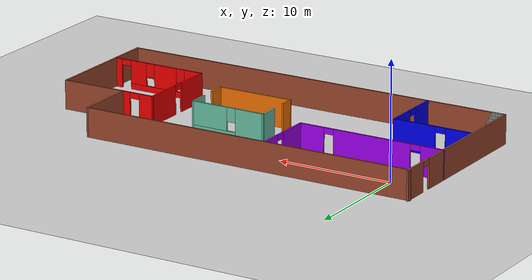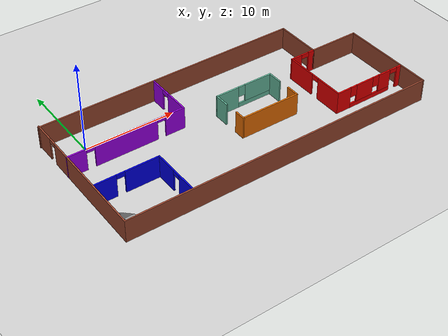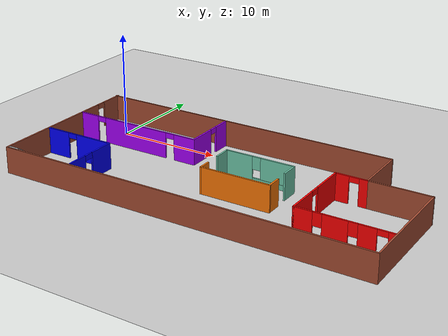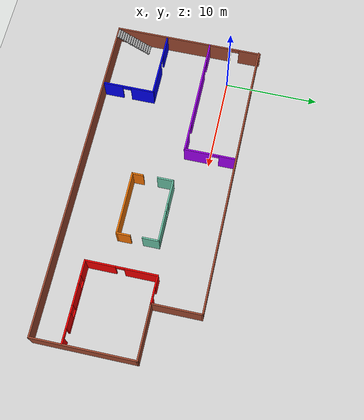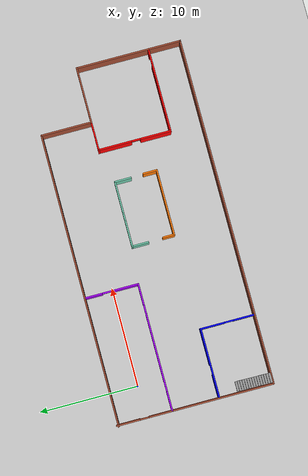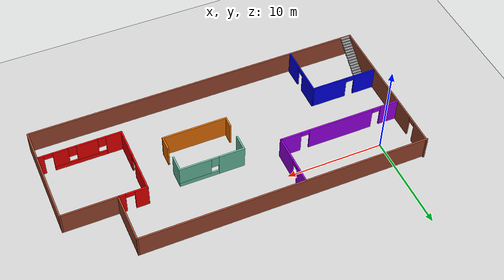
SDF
<sdf version="1.6">
 <world name="default">
  <light name="sun" type="directional">
   <pose>0 0 10 0 -0 0</pose>
   <diffuse>0.8 0.8 0.8 1</diffuse>
   <specular>0.2 0.2 0.2 1</specular>
   <attenuation>
    <range>1000</range>
    <constant>0.9</constant>
    <linear>0.01</linear>
    <quadratic>0.001</quadratic>
   </attenuation>
   <direction>-0.5 0.1 -0.9</direction>
  </light>
  <model name="ground_plane">
   <static>1</static>
   <link name="link">
    <collision name="collision">
     <geometry><plane><normal>0 0 1</normal><size>100 100</size></plane></geometry>
     <surface><friction><ode><mu>100</mu><mu2>50</mu2></ode></friction></surface>
    </collision>
    <visual name="visual">
     <cast_shadows>0</cast_shadows>
     <geometry><plane><normal>0 0 1</normal><size>100 100</size></plane></geometry>
     <material>
      <script><uri>file://media/materials/scripts/gazebo.material</uri><name>Gazebo/Grey</name></script>
     </material>
    </visual>
   </link>
  </model>
  <gravity>0 0 -9.8</gravity>
  <magnetic_field>6e-06 2.3e-05 -4.2e-05</magnetic_field>
  <atmosphere type="adiabatic"/>
  <physics name="default_physics" default="0" type="ode">
   <max_step_size>0.001</max_step_size>
   <real_time_factor>1</real_time_factor>
   <real_time_update_rate>1000</real_time_update_rate>
  </physics>
  <scene><ambient>0.4 0.4 0.4 1</ambient><background>0.7 0.7 0.7 1</background><shadows>1</shadows></scene>
  <spherical_coordinates>
   <surface_model>EARTH_WGS84</surface_model>
   <latitude_deg>0</latitude_deg>
   <longitude_deg>0</longitude_deg>
   <elevation>0</elevation>
   <heading_deg>0</heading_deg>
  </spherical_coordinates>
  <model name="color_house">
   <pose>14.3213 -4.96551 0 0 -0 0</pose>
   <link name="Stairs_0">
    <visual name="Stairs_0_Visual_0">
     <pose>-16.8708 -4.50508 0.083333 0 -0 0</pose>
     <geometry><box><size>1 0.233333 0.166667</size></box></geometry>
     <material>
      <script><uri>file://media/materials/scripts/gazebo.material</uri><name>Gazebo/Grey</name></script>
      <ambient>1 1 1 1</ambient>
     </material>
     <meta><layer>0</layer></meta>
    </visual>
    <collision name="Stairs_0_Collision_0">
     <geometry><box><size>1 0.233333 0.166667</size></box></geometry>
     <pose>-16.8708 -4.50508 0.083333 0 -0 0</pose>
    </collision>
    <visual name="Stairs_0_Visual_1">
     <pose>-16.8708 -4.73841 0.25 0 -0 0</pose>
     <geometry><box><size>1 0.233333 0.166667</size></box></geometry>
     <material>
      <script><uri>file://media/materials/scripts/gazebo.material</uri><name>Gazebo/Grey</name></script>
      <ambient>1 1 1 1</ambient>
     </material>
     <meta><layer>0</layer></meta>
    </visual>
    <collision name="Stairs_0_Collision_1">
     <geometry><box><size>1 0.233333 0.166667</size></box></geometry>
     <pose>-16.8708 -4.73841 0.25 0 -0 0</pose>
    </collision>
    <visual name="Stairs_0_Visual_2">
     <pose>-16.8708 -4.97174 0.416667 0 -0 0</pose>
     <geometry><box><size>1 0.233333 0.166667</size></box></geometry>
     <material>
      <script><uri>file://media/materials/scripts/gazebo.material</uri><name>Gazebo/Grey</name></script>
      <ambient>1 1 1 1</ambient>
     </material>
     <meta><layer>0</layer></meta>
    </visual>
    <collision name="Stairs_0_Collision_2">
     <geometry><box><size>1 0.233333 0.166667</size></box></geometry>
     <pose>-16.8708 -4.97174 0.416667 0 -0 0</pose>
    </collision>
    <visual name="Stairs_0_Visual_3">
     <pose>-16.8708 -5.20508 0.583333 0 -0 0</pose>
     <geometry><box><size>1 0.233333 0.166667</size></box></geometry>
     <material>
      <script><uri>file://media/materials/scripts/gazebo.material</uri><name>Gazebo/Grey</name></script>
      <ambient>1 1 1 1</ambient>
     </material>
     <meta><layer>0</layer></meta>
    </visual>
    <collision name="Stairs_0_Collision_3">
     <geometry><box><size>1 0.233333 0.166667</size></box></geometry>
     <pose>-16.8708 -5.20508 0.583333 0 -0 0</pose>
    </collision>
    <visual name="Stairs_0_Visual_4">
     <pose>-16.8708 -5.43841 0.75 0 -0 0</pose>
     <geometry><box><size>1 0.233333 0.166667</size></box></geometry>
     <material>
      <script><uri>file://media/materials/scripts/gazebo.material</uri><name>Gazebo/Grey</name></script>
      <ambient>1 1 1 1</ambient>
     </material>
     <meta><layer>0</layer></meta>
    </visual>
    <collision name="Stairs_0_Collision_4">
     <geometry><box><size>1 0.233333 0.166667</size></box></geometry>
     <pose>-16.8708 -5.43841 0.75 0 -0 0</pose>
    </collision>
    <visual name="Stairs_0_Visual_5">
     <pose>-16.8708 -5.67174 0.916667 0 -0 0</pose>
     <geometry><box><size>1 0.233333 0.166667</size></box></geometry>
     <material>
      <script><uri>file://media/materials/scripts/gazebo.material</uri><name>Gazebo/Grey</name></script>
      <ambient>1 1 1 1</ambient>
     </material>
     <meta><layer>0</layer></meta>
    </visual>
    <collision name="Stairs_0_Collision_5">
     <geometry><box><size>1 0.233333 0.166667</size></box></geometry>
     <pose>-16.8708 -5.67174 0.916667 0 -0 0</pose>
    </collision>
    <visual name="Stairs_0_Visual_6">
     <pose>-16.8708 -5.90508 1.08333 0 -0 0</pose>
     <geometry><box><size>1 0.233333 0.166667</size></box></geometry>
     <material>
      <script><uri>file://media/materials/scripts/gazebo.material</uri><name>Gazebo/Grey</name></script>
      <ambient>1 1 1 1</ambient>
     </material>
     <meta><layer>0</layer></meta>
    </visual>
    <collision name="Stairs_0_Collision_6">
     <geometry><box><size>1 0.233333 0.166667</size></box></geometry>
     <pose>-16.8708 -5.90508 1.08333 0 -0 0</pose>
    </collision>
    <visual name="Stairs_0_Visual_7">
     <pose>-16.8708 -6.13841 1.25 0 -0 0</pose>
     <geometry><box><size>1 0.233333 0.166667</size></box></geometry>
     <material>
      <script><uri>file://media/materials/scripts/gazebo.material</uri><name>Gazebo/Grey</name></script>
      <ambient>1 1 1 1</ambient>
     </material>
     <meta><layer>0</layer></meta>
    </visual>
    <collision name="Stairs_0_Collision_7">
     <geometry><box><size>1 0.233333 0.166667</size></box></geometry>
     <pose>-16.8708 -6.13841 1.25 0 -0 0</pose>
    </collision>
    <visual name="Stairs_0_Visual_8">
     <pose>-16.8708 -6.37174 1.41667 0 -0 0</pose>
     <geometry><box><size>1 0.233333 0.166667</size></box></geometry>
     <material>
      <script><uri>file://media/materials/scripts/gazebo.material</uri><name>Gazebo/Grey</name></script>
      <ambient>1 1 1 1</ambient>
     </material>
     <meta><layer>0</layer></meta>
    </visual>
    <collision name="Stairs_0_Collision_8">
     <geometry><box><size>1 0.233333 0.166667</size></box></geometry>
     <pose>-16.8708 -6.37174 1.41667 0 -0 0</pose>
    </collision>
    <visual name="Stairs_0_Visual_9">
     <pose>-16.8708 -6.60508 1.58333 0 -0 0</pose>
     <geometry><box><size>1 0.233333 0.166667</size></box></geometry>
     <material>
      <script><uri>file://media/materials/scripts/gazebo.material</uri><name>Gazebo/Grey</name></script>
      <ambient>1 1 1 1</ambient>
     </material>
     <meta><layer>0</layer></meta>
    </visual>
    <collision name="Stairs_0_Collision_9">
     <geometry><box><size>1 0.233333 0.166667</size></box></geometry>
     <pose>-16.8708 -6.60508 1.58333 0 -0 0</pose>
    </collision>
    <visual name="Stairs_0_Visual_10">
     <pose>-16.8708 -6.83841 1.75 0 -0 0</pose>
     <geometry><box><size>1 0.233333 0.166667</size></box></geometry>
     <material>
      <script><uri>file://media/materials/scripts/gazebo.material</uri><name>Gazebo/Grey</name></script>
      <ambient>1 1 1 1</ambient>
     </material>
     <meta><layer>0</layer></meta>
    </visual>
    <collision name="Stairs_0_Collision_10">
     <geometry><box><size>1 0.233333 0.166667</size></box></geometry>
     <pose>-16.8708 -6.83841 1.75 0 -0 0</pose>
    </collision>
    <visual name="Stairs_0_Visual_11">
     <pose>-16.8708 -7.07174 1.91667 0 -0 0</pose>
     <geometry><box><size>1 0.233333 0.166667</size></box></geometry>
     <material>
      <script><uri>file://media/materials/scripts/gazebo.material</uri><name>Gazebo/Grey</name></script>
      <ambient>1 1 1 1</ambient>
     </material>
     <meta><layer>0</layer></meta>
    </visual>
    <collision name="Stairs_0_Collision_11">
     <geometry><box><size>1 0.233333 0.166667</size></box></geometry>
     <pose>-16.8708 -7.07174 1.91667 0 -0 0</pose>
    </collision>
    <visual name="Stairs_0_Visual_12">
     <pose>-16.8708 -7.30508 2.08333 0 -0 0</pose>
     <geometry><box><size>1 0.233333 0.166667</size></box></geometry>
     <material>
      <script><uri>file://media/materials/scripts/gazebo.material</uri><name>Gazebo/Grey</name></script>
      <ambient>1 1 1 1</ambient>
     </material>
     <meta><layer>0</layer></meta>
    </visual>
    <collision name="Stairs_0_Collision_12">
     <geometry><box><size>1 0.233333 0.166667</size></box></geometry>
     <pose>-16.8708 -7.30508 2.08333 0 -0 0</pose>
    </collision>
    <visual name="Stairs_0_Visual_13">
     <pose>-16.8708 -7.53841 2.25 0 -0 0</pose>
     <geometry><box><size>1 0.233333 0.166667</size></box></geometry>
     <material>
      <script><uri>file://media/materials/scripts/gazebo.material</uri><name>Gazebo/Grey</name></script>
      <ambient>1 1 1 1</ambient>
     </material>
     <meta><layer>0</layer></meta>
    </visual>
    <collision name="Stairs_0_Collision_13">
     <geometry><box><size>1 0.233333 0.166667</size></box></geometry>
     <pose>-16.8708 -7.53841 2.25 0 -0 0</pose>
    </collision>
    <visual name="Stairs_0_Visual_14">
     <pose>-16.8708 -7.77174 2.41667 0 -0 0</pose>
     <geometry><box><size>1 0.233333 0.166667</size></box></geometry>
     <material>
      <script><uri>file://media/materials/scripts/gazebo.material</uri><name>Gazebo/Grey</name></script>
      <ambient>1 1 1 1</ambient>
     </material>
     <meta><layer>0</layer></meta>
    </visual>
    <collision name="Stairs_0_Collision_14">
     <geometry><box><size>1 0.233333 0.166667</size></box></geometry>
     <pose>-16.8708 -7.77174 2.41667 0 -0 0</pose>
    </collision>
   </link>
   <link name="Wall_29">
    <pose>-17.5 0 0 0 0 -1.5708</pose>
    <visual name="Wall_29_Visual_0">
     <pose>-6.79966 0 1.25 0 -0 0</pose>
     <geometry><box><size>2.40067 0.15 2.5</size></box></geometry>
     <material>
      <script><uri>file://media/materials/scripts/gazebo.material</uri><name>Gazebo/Bricks</name></script>
      <ambient>1 1 1 1</ambient>
     </material>
     <meta><layer>0</layer></meta>
    </visual>
    <collision name="Wall_29_Collision_0">
     <geometry><box><size>2.40067 0.15 2.5</size></box></geometry>
     <pose>-6.79966 0 1.25 0 -0 0</pose>
    </collision>
    <visual name="Wall_29_Visual_1">
     <pose>1.65034 0 1.25 0 -0 0</pose>
     <geometry><box><size>12.6993 0.15 2.5</size></box></geometry>
     <material>
      <script><uri>file://media/materials/scripts/gazebo.material</uri><name>Gazebo/Bricks</name></script>
      <ambient>1 1 1 1</ambient>
     </material>
     <meta><layer>0</layer></meta>
    </visual>
    <collision name="Wall_29_Collision_1">
     <geometry><box><size>12.6993 0.15 2.5</size></box></geometry>
     <pose>1.65034 0 1.25 0 -0 0</pose>
    </collision>
    <visual name="Wall_29_Visual_2">
     <pose>-5.14933 0 2.25 0 -0 0</pose>
     <geometry><box><size>0.9 0.15 0.5</size></box></geometry>
     <material>
      <script><uri>file://media/materials/scripts/gazebo.material</uri><name>Gazebo/Bricks</name></script>
      <ambient>1 1 1 1</ambient>
     </material>
     <meta><layer>0</layer></meta>
    </visual>
    <collision name="Wall_29_Collision_2">
     <geometry><box><size>0.9 0.15 0.5</size></box></geometry>
     <pose>-5.14933 0 2.25 0 -0 0</pose>
    </collision>
   </link>
   <link name="Wall_30">
    <collision name="Wall_30_Collision">
     <geometry><box><size>35.25 0.15 2.5</size></box></geometry>
     <pose>0 0 1.25 0 -0 0</pose>
    </collision>
    <visual name="Wall_30_Visual">
     <pose>0 0 1.25 0 -0 0</pose>
     <geometry><box><size>35.25 0.15 2.5</size></box></geometry>
     <material>
      <script><uri>file://media/materials/scripts/gazebo.material</uri><name>Gazebo/Bricks</name></script>
      <ambient>1 1 1 1</ambient>
     </material>
     <meta><layer>0</layer></meta>
    </visual>
    <pose>0.05 -7.925 0 0 -0 0</pose>
   </link>
   <link name="Wall_33">
    <collision name="Wall_33_Collision">
     <geometry><box><size>10.75 0.15 2.5</size></box></geometry>
     <pose>0 0 1.25 0 -0 0</pose>
    </collision>
    <visual name="Wall_33_Visual">
     <pose>0 0 1.25 0 -0 0</pose>
     <geometry><box><size>10.75 0.15 2.5</size></box></geometry>
     <material>
      <script><uri>file://media/materials/scripts/gazebo.material</uri><name>Gazebo/Bricks</name></script>
      <ambient>1 1 1 1</ambient>
     </material>
     <meta><layer>0</layer></meta>
    </visual>
    <pose>17.6 -2.625 0 0 -0 1.5708</pose>
   </link>
   <link name="Wall_34">
    <collision name="Wall_34_Collision">
     <geometry><box><size>5.75 0.15 2.5</size></box></geometry>
     <pose>0 0 1.25 0 -0 0</pose>
    </collision>
    <visual name="Wall_34_Visual">
     <pose>0 0 1.25 0 -0 0</pose>
     <geometry><box><size>5.75 0.15 2.5</size></box></geometry>
     <material>
      <script><uri>file://media/materials/scripts/gazebo.material</uri><name>Gazebo/Bricks</name></script>
      <ambient>1 1 1 1</ambient>
     </material>
     <meta><layer>0</layer></meta>
    </visual>
    <pose>14.8 2.675 0 0 -0 3.14159</pose>
   </link>
   <link name="Wall_35">
    <collision name="Wall_35_Collision">
     <geometry><box><size>5.25 0.15 2.5</size></box></geometry>
     <pose>0 0 1.25 0 -0 0</pose>
    </collision>
    <visual name="Wall_35_Visual">
     <pose>0 0 1.25 0 -0 0</pose>
     <geometry><box><size>5.25 0.15 2.5</size></box></geometry>
     <material>
      <script><uri>file://media/materials/scripts/gazebo.material</uri><name>Gazebo/Bricks</name></script>
      <ambient>1 1 1 1</ambient>
     </material>
     <meta><layer>0</layer></meta>
    </visual>
    <pose>12 5.225 0 0 -0 1.5708</pose>
   </link>
   <link name="Wall_36">
    <collision name="Wall_36_Collision">
     <geometry><box><size>29.75 0.15 2.5</size></box></geometry>
     <pose>0 0 1.25 0 -0 0</pose>
    </collision>
    <visual name="Wall_36_Visual">
     <pose>0 0 1.25 0 -0 0</pose>
     <geometry><box><size>29.75 0.15 2.5</size></box></geometry>
     <material>
      <script><uri>file://media/materials/scripts/gazebo.material</uri><name>Gazebo/Bricks</name></script>
      <ambient>1 1 1 1</ambient>
     </material>
     <meta><layer>0</layer></meta>
    </visual>
    <pose>-2.8 7.775 0 0 -0 3.14159</pose>
   </link>
   <link name="Wall_39">
    <pose>-11.075 2.33664 0 0 -0 0</pose>
    <visual name="Wall_39_Visual_0">
     <pose>-5.4662 0 1.25 0 -0 0</pose>
     <geometry><box><size>2.06759 0.15 2.5</size></box></geometry>
     <material>
      <script><uri>file://media/materials/scripts/gazebo.material</uri><name>Gazebo/Grey</name></script>
      <ambient>0.666667 0 1 1</ambient>
     </material>
     <meta><layer>0</layer></meta>
    </visual>
    <collision name="Wall_39_Collision_0">
     <geometry><box><size>2.06759 0.15 2.5</size></box></geometry>
     <pose>-5.4662 0 1.25 0 -0 0</pose>
    </collision>
    <visual name="Wall_39_Visual_1">
     <pose>-0.077961 0 1.25 0 -0 0</pose>
     <geometry><box><size>6.90889 0.15 2.5</size></box></geometry>
     <material>
      <script><uri>file://media/materials/scripts/gazebo.material</uri><name>Gazebo/Grey</name></script>
      <ambient>0.666667 0 1 1</ambient>
     </material>
     <meta><layer>0</layer></meta>
    </visual>
    <collision name="Wall_39_Collision_1">
     <geometry><box><size>6.90889 0.15 2.5</size></box></geometry>
     <pose>-0.077961 0 1.25 0 -0 0</pose>
    </collision>
    <visual name="Wall_39_Visual_2">
     <pose>5.38824 0 1.25 0 -0 0</pose>
     <geometry><box><size>2.22351 0.15 2.5</size></box></geometry>
     <material>
      <script><uri>file://media/materials/scripts/gazebo.material</uri><name>Gazebo/Grey</name></script>
      <ambient>0.666667 0 1 1</ambient>
     </material>
     <meta><layer>0</layer></meta>
    </visual>
    <collision name="Wall_39_Collision_2">
     <geometry><box><size>2.22351 0.15 2.5</size></box></geometry>
     <pose>5.38824 0 1.25 0 -0 0</pose>
    </collision>
    <visual name="Wall_39_Visual_3">
     <pose>-3.98241 0 2.25 0 -0 0</pose>
     <geometry><box><size>0.9 0.15 0.5</size></box></geometry>
     <material>
      <script><uri>file://media/materials/scripts/gazebo.material</uri><name>Gazebo/Grey</name></script>
      <ambient>0.666667 0 1 1</ambient>
     </material>
     <meta><layer>0</layer></meta>
    </visual>
    <collision name="Wall_39_Collision_3">
     <geometry><box><size>0.9 0.15 0.5</size></box></geometry>
     <pose>-3.98241 0 2.25 0 -0 0</pose>
    </collision>
    <visual name="Wall_39_Visual_4">
     <pose>3.82649 0 2.25 0 -0 0</pose>
     <geometry><box><size>0.9 0.15 0.5</size></box></geometry>
     <material>
      <script><uri>file://media/materials/scripts/gazebo.material</uri><name>Gazebo/Grey</name></script>
      <ambient>0.666667 0 1 1</ambient>
     </material>
     <meta><layer>0</layer></meta>
    </visual>
    <collision name="Wall_39_Collision_4">
     <geometry><box><size>0.9 0.15 0.5</size></box></geometry>
     <pose>3.82649 0 2.25 0 -0 0</pose>
    </collision>
   </link>
   <link name="Wall_40">
    <pose>-4.65 5.01164 0 0 -0 1.5708</pose>
    <visual name="Wall_40_Visual_0">
     <pose>-1.34611 0 1.25 0 -0 0</pose>
     <geometry><box><size>2.80777 0.15 2.5</size></box></geometry>
     <material>
      <script><uri>file://media/materials/scripts/gazebo.material</uri><name>Gazebo/Grey</name></script>
      <ambient>0.666667 0 1 1</ambient>
     </material>
     <meta><layer>0</layer></meta>
    </visual>
    <collision name="Wall_40_Collision_0">
     <geometry><box><size>2.80777 0.15 2.5</size></box></geometry>
     <pose>-1.34611 0 1.25 0 -0 0</pose>
    </collision>
    <visual name="Wall_40_Visual_1">
     <pose>1.85389 0 1.25 0 -0 0</pose>
     <geometry><box><size>1.79223 0.15 2.5</size></box></geometry>
     <material>
      <script><uri>file://media/materials/scripts/gazebo.material</uri><name>Gazebo/Grey</name></script>
      <ambient>0.666667 0 1 1</ambient>
     </material>
     <meta><layer>0</layer></meta>
    </visual>
    <collision name="Wall_40_Collision_1">
     <geometry><box><size>1.79223 0.15 2.5</size></box></geometry>
     <pose>1.85389 0 1.25 0 -0 0</pose>
    </collision>
    <visual name="Wall_40_Visual_2">
     <pose>0.507772 0 2.25 0 -0 0</pose>
     <geometry><box><size>0.9 0.15 0.5</size></box></geometry>
     <material>
      <script><uri>file://media/materials/scripts/gazebo.material</uri><name>Gazebo/Grey</name></script>
      <ambient>0.666667 0 1 1</ambient>
     </material>
     <meta><layer>0</layer></meta>
    </visual>
    <collision name="Wall_40_Collision_2">
     <geometry><box><size>0.9 0.15 0.5</size></box></geometry>
     <pose>0.507772 0 2.25 0 -0 0</pose>
    </collision>
   </link>
   <link name="Wall_42">
    <pose>-13.927 -2.43751 0 0 -0 0</pose>
    <visual name="Wall_42_Visual_0">
     <pose>-2.33667 0 1.25 0 -0 0</pose>
     <geometry><box><size>2.32666 0.15 2.5</size></box></geometry>
     <material>
      <script><uri>file://media/materials/scripts/gazebo.material</uri><name>Gazebo/Grey</name></script>
      <ambient>0 0 1 1</ambient>
     </material>
     <meta><layer>0</layer></meta>
    </visual>
    <collision name="Wall_42_Collision_0">
     <geometry><box><size>2.32666 0.15 2.5</size></box></geometry>
     <pose>-2.33667 0 1.25 0 -0 0</pose>
    </collision>
    <visual name="Wall_42_Visual_1">
     <pose>1.61333 0 1.25 0 -0 0</pose>
     <geometry><box><size>3.77334 0.15 2.5</size></box></geometry>
     <material>
      <script><uri>file://media/materials/scripts/gazebo.material</uri><name>Gazebo/Grey</name></script>
      <ambient>0 0 1 1</ambient>
     </material>
     <meta><layer>0</layer></meta>
    </visual>
    <collision name="Wall_42_Collision_1">
     <geometry><box><size>3.77334 0.15 2.5</size></box></geometry>
     <pose>1.61333 0 1.25 0 -0 0</pose>
    </collision>
    <visual name="Wall_42_Visual_2">
     <pose>-0.723345 0 2.25 0 -0 0</pose>
     <geometry><box><size>0.9 0.15 0.5</size></box></geometry>
     <material>
      <script><uri>file://media/materials/scripts/gazebo.material</uri><name>Gazebo/Grey</name></script>
      <ambient>0 0 1 1</ambient>
     </material>
     <meta><layer>0</layer></meta>
    </visual>
    <collision name="Wall_42_Collision_2">
     <geometry><box><size>0.9 0.15 0.5</size></box></geometry>
     <pose>-0.723345 0 2.25 0 -0 0</pose>
    </collision>
   </link>
   <link name="Wall_43">
    <pose>-10.502 -5.11251 0 0 0 -1.5708</pose>
    <visual name="Wall_43_Visual_0">
     <pose>-1.49415 0 1.25 0 -0 0</pose>
     <geometry><box><size>2.5117 0.15 2.5</size></box></geometry>
     <material>
      <script><uri>file://media/materials/scripts/gazebo.material</uri><name>Gazebo/Grey</name></script>
      <ambient>0 0 1 1</ambient>
     </material>
     <meta><layer>0</layer></meta>
    </visual>
    <collision name="Wall_43_Collision_0">
     <geometry><box><size>2.5117 0.15 2.5</size></box></geometry>
     <pose>-1.49415 0 1.25 0 -0 0</pose>
    </collision>
    <visual name="Wall_43_Visual_1">
     <pose>1.70585 0 1.25 0 -0 0</pose>
     <geometry><box><size>2.0883 0.15 2.5</size></box></geometry>
     <material>
      <script><uri>file://media/materials/scripts/gazebo.material</uri><name>Gazebo/Grey</name></script>
      <ambient>0 0 1 1</ambient>
     </material>
     <meta><layer>0</layer></meta>
    </visual>
    <collision name="Wall_43_Collision_1">
     <geometry><box><size>2.0883 0.15 2.5</size></box></geometry>
     <pose>1.70585 0 1.25 0 -0 0</pose>
    </collision>
    <visual name="Wall_43_Visual_2">
     <pose>0.2117 0 2.25 0 -0 0</pose>
     <geometry><box><size>0.9 0.15 0.5</size></box></geometry>
     <material>
      <script><uri>file://media/materials/scripts/gazebo.material</uri><name>Gazebo/Grey</name></script>
      <ambient>0 0 1 1</ambient>
     </material>
     <meta><layer>0</layer></meta>
    </visual>
    <collision name="Wall_43_Collision_2">
     <geometry><box><size>0.9 0.15 0.5</size></box></geometry>
     <pose>0.2117 0 2.25 0 -0 0</pose>
    </collision>
   </link>
   <link name="Wall_45">
    <collision name="Wall_45_Collision">
     <geometry><box><size>1.75 0.15 2.5</size></box></geometry>
     <pose>0 0 1.25 0 -0 0</pose>
    </collision>
    <visual name="Wall_45_Visual">
     <pose>0 0 1.25 0 -0 0</pose>
     <geometry><box><size>1.75 0.15 2.5</size></box></geometry>
     <material>
      <script><uri>file://media/materials/scripts/gazebo.material</uri><name>Gazebo/Grey</name></script>
      <ambient>0.435294 0.796078 0.67451 1</ambient>
     </material>
     <meta><layer>0</layer></meta>
    </visual>
    <pose>-0.919981 1.13816 0 0 -0 1.5708</pose>
   </link>
   <link name="Wall_46">
    <pose>2.38002 1.93816 0 0 -0 0</pose>
    <visual name="Wall_46_Visual_0">
     <pose>-2.03864 0 1.25 0 -0 0</pose>
     <geometry><box><size>2.67273 0.15 2.5</size></box></geometry>
     <material>
      <script><uri>file://media/materials/scripts/gazebo.material</uri><name>Gazebo/Grey</name></script>
      <ambient>0.435294 0.796078 0.67451 1</ambient>
     </material>
     <meta><layer>0</layer></meta>
    </visual>
    <collision name="Wall_46_Collision_0">
     <geometry><box><size>2.67273 0.15 2.5</size></box></geometry>
     <pose>-2.03864 0 1.25 0 -0 0</pose>
    </collision>
    <visual name="Wall_46_Visual_1">
     <pose>1.33636 0 0.25 0 -0 0</pose>
     <geometry><box><size>4.07727 0.15 0.5</size></box></geometry>
     <material>
      <script><uri>file://media/materials/scripts/gazebo.material</uri><name>Gazebo/Grey</name></script>
      <ambient>0.435294 0.796078 0.67451 1</ambient>
     </material>
     <meta><layer>0</layer></meta>
    </visual>
    <collision name="Wall_46_Collision_1">
     <geometry><box><size>4.07727 0.15 0.5</size></box></geometry>
     <pose>1.33636 0 0.25 0 -0 0</pose>
    </collision>
    <visual name="Wall_46_Visual_2">
     <pose>1.73636 0 1.5 0 -0 0</pose>
     <geometry><box><size>3.27727 0.15 2</size></box></geometry>
     <material>
      <script><uri>file://media/materials/scripts/gazebo.material</uri><name>Gazebo/Grey</name></script>
      <ambient>0.435294 0.796078 0.67451 1</ambient>
     </material>
     <meta><layer>0</layer></meta>
    </visual>
    <collision name="Wall_46_Collision_2">
     <geometry><box><size>3.27727 0.15 2</size></box></geometry>
     <pose>1.73636 0 1.5 0 -0 0</pose>
    </collision>
    <visual name="Wall_46_Visual_3">
     <pose>-0.302273 0 1.9 0 -0 0</pose>
     <geometry><box><size>0.8 0.15 1.2</size></box></geometry>
     <material>
      <script><uri>file://media/materials/scripts/gazebo.material</uri><name>Gazebo/Grey</name></script>
      <ambient>0.435294 0.796078 0.67451 1</ambient>
     </material>
     <meta><layer>0</layer></meta>
    </visual>
    <collision name="Wall_46_Collision_3">
     <geometry><box><size>0.8 0.15 1.2</size></box></geometry>
     <pose>-0.302273 0 1.9 0 -0 0</pose>
    </collision>
   </link>
   <link name="Wall_47">
    <collision name="Wall_47_Collision">
     <geometry><box><size>1.75 0.15 2.5</size></box></geometry>
     <pose>0 0 1.25 0 -0 0</pose>
    </collision>
    <visual name="Wall_47_Visual">
     <pose>0 0 1.25 0 -0 0</pose>
     <geometry><box><size>1.75 0.15 2.5</size></box></geometry>
     <material>
      <script><uri>file://media/materials/scripts/gazebo.material</uri><name>Gazebo/Grey</name></script>
      <ambient>0.435294 0.796078 0.67451 1</ambient>
     </material>
     <meta><layer>0</layer></meta>
    </visual>
    <pose>5.68002 1.13816 0 0 0 -1.5708</pose>
   </link>
   <link name="Wall_49">
    <collision name="Wall_49_Collision">
     <geometry><box><size>1.5 0.15 2.5</size></box></geometry>
     <pose>0 0 1.25 0 -0 0</pose>
    </collision>
    <visual name="Wall_49_Visual">
     <pose>0 0 1.25 0 -0 0</pose>
     <geometry><box><size>1.5 0.15 2.5</size></box></geometry>
     <material>
      <script><uri>file://media/materials/scripts/gazebo.material</uri><name>Gazebo/Grey</name></script>
      <ambient>0.996078 0.47451 0.0196078 1</ambient>
     </material>
     <meta><layer>0</layer></meta>
    </visual>
    <pose>5.74163 -1.66916 0 0 0 -1.5708</pose>
   </link>
   <link name="Wall_50">
    <collision name="Wall_50_Collision">
     <geometry><box><size>6.75 0.15 2.5</size></box></geometry>
     <pose>0 0 1.25 0 -0 0</pose>
    </collision>
    <visual name="Wall_50_Visual">
     <pose>0 0 1.25 0 -0 0</pose>
     <geometry><box><size>6.75 0.15 2.5</size></box></geometry>
     <material>
      <script><uri>file://media/materials/scripts/gazebo.material</uri><name>Gazebo/Grey</name></script>
      <ambient>0.996078 0.47451 0.0196078 1</ambient>
     </material>
     <meta><layer>0</layer></meta>
    </visual>
    <pose>2.44164 -2.34416 0 0 -0 3.14159</pose>
   </link>
   <link name="Wall_51">
    <collision name="Wall_51_Collision">
     <geometry><box><size>1.25 0.15 2.5</size></box></geometry>
     <pose>0 0 1.25 0 -0 0</pose>
    </collision>
    <visual name="Wall_51_Visual">
     <pose>0 0 1.25 0 -0 0</pose>
     <geometry><box><size>1.25 0.15 2.5</size></box></geometry>
     <material>
      <script><uri>file://media/materials/scripts/gazebo.material</uri><name>Gazebo/Grey</name></script>
      <ambient>0.996078 0.47451 0.0196078 1</ambient>
     </material>
     <meta><layer>0</layer></meta>
    </visual>
    <pose>-0.858366 -1.79416 0 0 -0 1.5708</pose>
   </link>
   <link name="Wall_53">
    <pose>10.575 2.675 0 0 -0 3.14159</pose>
    <visual name="Wall_53_Visual_0">
     <pose>-1.11194 0 1.25 0 -0 0</pose>
     <geometry><box><size>0.776128 0.15 2.5</size></box></geometry>
     <material>
      <script><uri>file://media/materials/scripts/gazebo.material</uri><name>Gazebo/Grey</name></script>
      <ambient>1 0 0 1</ambient>
     </material>
     <meta><layer>0</layer></meta>
    </visual>
    <collision name="Wall_53_Collision_0">
     <geometry><box><size>0.776128 0.15 2.5</size></box></geometry>
     <pose>-1.11194 0 1.25 0 -0 0</pose>
    </collision>
    <visual name="Wall_53_Visual_1">
     <pose>0.838064 0 1.25 0 -0 0</pose>
     <geometry><box><size>1.32387 0.15 2.5</size></box></geometry>
     <material>
      <script><uri>file://media/materials/scripts/gazebo.material</uri><name>Gazebo/Grey</name></script>
      <ambient>1 0 0 1</ambient>
     </material>
     <meta><layer>0</layer></meta>
    </visual>
    <collision name="Wall_53_Collision_1">
     <geometry><box><size>1.32387 0.15 2.5</size></box></geometry>
     <pose>0.838064 0 1.25 0 -0 0</pose>
    </collision>
    <visual name="Wall_53_Visual_2">
     <pose>-0.273872 0 2.25 0 -0 0</pose>
     <geometry><box><size>0.9 0.15 0.5</size></box></geometry>
     <material>
      <script><uri>file://media/materials/scripts/gazebo.material</uri><name>Gazebo/Grey</name></script>
      <ambient>1 0 0 1</ambient>
     </material>
     <meta><layer>0</layer></meta>
    </visual>
    <collision name="Wall_53_Collision_2">
     <geometry><box><size>0.9 0.15 0.5</size></box></geometry>
     <pose>-0.273872 0 2.25 0 -0 0</pose>
    </collision>
   </link>
   <link name="Wall_56">
    <pose>9.15 -1 0 0 0 -1.5708</pose>
    <visual name="Wall_56_Visual_0">
     <pose>-2.0289 0 1.25 0 -0 0</pose>
     <geometry><box><size>3.4422 0.15 2.5</size></box></geometry>
     <material>
      <script><uri>file://media/materials/scripts/gazebo.material</uri><name>Gazebo/Grey</name></script>
      <ambient>1 0 0 1</ambient>
     </material>
     <meta><layer>0</layer></meta>
    </visual>
    <collision name="Wall_56_Collision_0">
     <geometry><box><size>3.4422 0.15 2.5</size></box></geometry>
     <pose>-2.0289 0 1.25 0 -0 0</pose>
    </collision>
    <visual name="Wall_56_Visual_1">
     <pose>2.1711 0 1.25 0 -0 0</pose>
     <geometry><box><size>3.1578 0.15 2.5</size></box></geometry>
     <material>
      <script><uri>file://media/materials/scripts/gazebo.material</uri><name>Gazebo/Grey</name></script>
      <ambient>1 0 0 1</ambient>
     </material>
     <meta><layer>0</layer></meta>
    </visual>
    <collision name="Wall_56_Collision_1">
     <geometry><box><size>3.1578 0.15 2.5</size></box></geometry>
     <pose>2.1711 0 1.25 0 -0 0</pose>
    </collision>
    <visual name="Wall_56_Visual_2">
     <pose>0.142198 0 2.25 0 -0 0</pose>
     <geometry><box><size>0.9 0.15 0.5</size></box></geometry>
     <material>
      <script><uri>file://media/materials/scripts/gazebo.material</uri><name>Gazebo/Grey</name></script>
      <ambient>1 0 0 1</ambient>
     </material>
     <meta><layer>0</layer></meta>
    </visual>
    <collision name="Wall_56_Collision_2">
     <geometry><box><size>0.9 0.15 0.5</size></box></geometry>
     <pose>0.142198 0 2.25 0 -0 0</pose>
    </collision>
   </link>
   <link name="Wall_57">
    <pose>13.325 -4.675 0 0 -0 0</pose>
    <visual name="Wall_57_Visual_0">
     <pose>-3.39652 0 1.25 0 -0 0</pose>
     <geometry><box><size>1.70695 0.15 2.5</size></box></geometry>
     <material>
      <script><uri>file://media/materials/scripts/gazebo.material</uri><name>Gazebo/Grey</name></script>
      <ambient>1 0 0 1</ambient>
     </material>
     <meta><layer>0</layer></meta>
    </visual>
    <collision name="Wall_57_Collision_0">
     <geometry><box><size>1.70695 0.15 2.5</size></box></geometry>
     <pose>-3.39652 0 1.25 0 -0 0</pose>
    </collision>
    <visual name="Wall_57_Visual_1">
     <pose>3.94312 0 1.25 0 -0 0</pose>
     <geometry><box><size>0.613753 0.15 2.5</size></box></geometry>
     <material>
      <script><uri>file://media/materials/scripts/gazebo.material</uri><name>Gazebo/Grey</name></script>
      <ambient>1 0 0 1</ambient>
     </material>
     <meta><layer>0</layer></meta>
    </visual>
    <collision name="Wall_57_Collision_1">
     <geometry><box><size>0.613753 0.15 2.5</size></box></geometry>
     <pose>3.94312 0 1.25 0 -0 0</pose>
    </collision>
    <visual name="Wall_57_Visual_2">
     <pose>0.0966 0 0.25 0 -0 0</pose>
     <geometry><box><size>5.27929 0.15 0.5</size></box></geometry>
     <material>
      <script><uri>file://media/materials/scripts/gazebo.material</uri><name>Gazebo/Grey</name></script>
      <ambient>1 0 0 1</ambient>
     </material>
     <meta><layer>0</layer></meta>
    </visual>
    <collision name="Wall_57_Collision_2">
     <geometry><box><size>5.27929 0.15 0.5</size></box></geometry>
     <pose>0.0966 0 0.25 0 -0 0</pose>
    </collision>
    <visual name="Wall_57_Visual_3">
     <pose>-0.662687 0 1.5 0 -0 0</pose>
     <geometry><box><size>2.16072 0.15 2</size></box></geometry>
     <material>
      <script><uri>file://media/materials/scripts/gazebo.material</uri><name>Gazebo/Grey</name></script>
      <ambient>1 0 0 1</ambient>
     </material>
     <meta><layer>0</layer></meta>
    </visual>
    <collision name="Wall_57_Collision_3">
     <geometry><box><size>2.16072 0.15 2</size></box></geometry>
     <pose>-0.662687 0 1.5 0 -0 0</pose>
    </collision>
    <visual name="Wall_57_Visual_4">
     <pose>1.97696 0 1.5 0 -0 0</pose>
     <geometry><box><size>1.51857 0.15 2</size></box></geometry>
     <material>
      <script><uri>file://media/materials/scripts/gazebo.material</uri><name>Gazebo/Grey</name></script>
      <ambient>1 0 0 1</ambient>
     </material>
     <meta><layer>0</layer></meta>
    </visual>
    <collision name="Wall_57_Collision_4">
     <geometry><box><size>1.51857 0.15 2</size></box></geometry>
     <pose>1.97696 0 1.5 0 -0 0</pose>
    </collision>
    <visual name="Wall_57_Visual_5">
     <pose>-2.14305 0 1.9 0 -0 0</pose>
     <geometry><box><size>0.8 0.15 1.2</size></box></geometry>
     <material>
      <script><uri>file://media/materials/scripts/gazebo.material</uri><name>Gazebo/Grey</name></script>
      <ambient>1 0 0 1</ambient>
     </material>
     <meta><layer>0</layer></meta>
    </visual>
    <collision name="Wall_57_Collision_5">
     <geometry><box><size>0.8 0.15 1.2</size></box></geometry>
     <pose>-2.14305 0 1.9 0 -0 0</pose>
    </collision>
    <visual name="Wall_57_Visual_6">
     <pose>0.817673 0 1.9 0 -0 0</pose>
     <geometry><box><size>0.8 0.15 1.2</size></box></geometry>
     <material>
      <script><uri>file://media/materials/scripts/gazebo.material</uri><name>Gazebo/Grey</name></script>
      <ambient>1 0 0 1</ambient>
     </material>
     <meta><layer>0</layer></meta>
    </visual>
    <collision name="Wall_57_Collision_6">
     <geometry><box><size>0.8 0.15 1.2</size></box></geometry>
     <pose>0.817673 0 1.9 0 -0 0</pose>
    </collision>
    <visual name="Wall_57_Visual_7">
     <pose>3.18625 0 2.25 0 -0 0</pose>
     <geometry><box><size>0.9 0.15 0.5</size></box></geometry>
     <material>
      <script><uri>file://media/materials/scripts/gazebo.material</uri><name>Gazebo/Grey</name></script>
      <ambient>1 0 0 1</ambient>
     </material>
     <meta><layer>0</layer></meta>
    </visual>
    <collision name="Wall_57_Collision_7">
     <geometry><box><size>0.9 0.15 0.5</size></box></geometry>
     <pose>3.18625 0 2.25 0 -0 0</pose>
    </collision>
   </link>
   <static>1</static>
  </model>
 </world>
</sdf>
